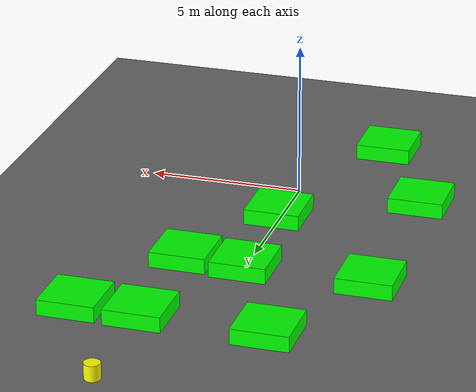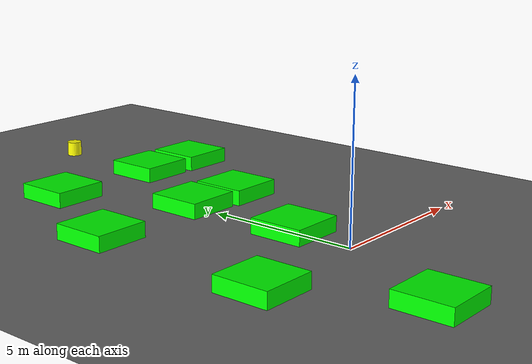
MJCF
<mujoco model="lvl4_standard_obs9_d2mid_seed1034">
    <compiler angle="degree" coordinate="local" inertiafromgeom="true"/>
    <option integrator="RK4" timestep="0.01"/>

    <asset>
        <texture builtin="gradient" height="100" rgb1="0.6 0.8 1" rgb2="0 0 0" type="skybox" width="100"/>
        <texture name="floor_texture" type="2d" builtin="checker" width="100" height="100" rgb1="0 0 0" rgb2="0.8 0.8 0.8"/>
        <material name="MatPlane" reflectance="0.5" shininess="1" specular="1" texrepeat="10 10" texture="floor_texture"/>
    </asset>

    <!-- Excluding the contact between the agent and the goal, and the agent and the floor -->
    <contact>
        <exclude body1="agent" body2="goal"/>
        <exclude body1 = "agent" body2 = "floor"/>
    </contact>

    <extension>
        <plugin plugin = "mujoco.pid">
            <instance name = "pid1">
                <config key="kp" value="2"/>
                <config key="ki" value="0"/>
                <config key="kd" value="55"/>
            </instance>
        </plugin>
    </extension>

    <worldbody>
        <light cutoff="100" diffuse="1 1 1" dir="-0 0 -1.3" directional="true" exponent="1" pos="0 0 1.3" specular=".1 .1 .1"/>
        <body name="floor" pos="0 0 0">
            <geom name="floor_geom" type="plane" size="20 20 0.1" material="MatPlane"/>
        </body>

                <body name="goal" pos="0.0000 0.0000 0">
            <geom name="goal_geom" type="plane" size="0.5 0.5 1" pos="0 0 0" rgba="1 0 0 1"/>
        </body>

                <body name="agent" pos="2.0000 14.0000 0.250">
            <joint name="j1" type="slide" axis ="1 0 0 "/>
            <joint name="j2" type="slide" axis ="0 1 0 "/>
            <geom name="agent_geom" type="cylinder" size="0.25 0.25 0.250" rgba="1 1 0 1"/>
        </body>

        <body name="obstacle1" pos="-1.9411 10.0604 0.250">  <geom name="obstacle1_geom" type="box" size="0.9000 0.9000 0.250" rgba="0 1 0 1"/></body>
        <body name="obstacle2" pos="1.9791 9.9786 0.250">  <geom name="obstacle2_geom" type="box" size="0.9000 0.9000 0.250" rgba="0 1 0 1"/></body>
        <body name="obstacle3" pos="4.0350 9.9388 0.250">  <geom name="obstacle3_geom" type="box" size="0.9000 0.9000 0.250" rgba="0 1 0 1"/></body>
        <body name="obstacle4" pos="-3.9529 6.0204 0.250">  <geom name="obstacle4_geom" type="box" size="0.9000 0.9000 0.250" rgba="0 1 0 1"/></body>
        <body name="obstacle5" pos="-0.0138 6.0462 0.250">  <geom name="obstacle5_geom" type="box" size="0.9000 0.9000 0.250" rgba="0 1 0 1"/></body>
        <body name="obstacle6" pos="1.9437 5.9262 0.250">  <geom name="obstacle6_geom" type="box" size="0.9000 0.9000 0.250" rgba="0 1 0 1"/></body>
        <body name="obstacle7" pos="0.0843 2.0895 0.250">  <geom name="obstacle7_geom" type="box" size="0.9000 0.9000 0.250" rgba="0 1 0 1"/></body>
        <body name="obstacle8" pos="-4.0696 -0.0918 0.250">  <geom name="obstacle8_geom" type="box" size="0.9000 0.9000 0.250" rgba="0 1 0 1"/></body>
        <body name="obstacle9" pos="-2.0132 -4.0405 0.250">  <geom name="obstacle9_geom" type="box" size="0.9000 0.9000 0.250" rgba="0 1 0 1"/></body>

    </worldbody>

    <sensor>
<!-- SENSORS -->

        <distance name="dist1" geom1="agent_geom" geom2="obstacle1_geom" cutoff="1.5"/>
        <distance name="dist2" geom1="agent_geom" geom2="obstacle2_geom" cutoff="1.5"/>
        <distance name="dist3" geom1="agent_geom" geom2="obstacle3_geom" cutoff="1.5"/>
        <distance name="dist4" geom1="agent_geom" geom2="obstacle4_geom" cutoff="1.5"/>
        <distance name="dist5" geom1="agent_geom" geom2="obstacle5_geom" cutoff="1.5"/>
        <distance name="dist6" geom1="agent_geom" geom2="obstacle6_geom" cutoff="1.5"/>
        <distance name="dist7" geom1="agent_geom" geom2="obstacle7_geom" cutoff="1.5"/>
        <distance name="dist8" geom1="agent_geom" geom2="obstacle8_geom" cutoff="1.5"/>
        <distance name="dist9" geom1="agent_geom" geom2="obstacle9_geom" cutoff="1.5"/>
</sensor>

    <actuator>
        <plugin joint="j1" plugin="mujoco.pid" instance="pid1" />
        <plugin joint="j2" plugin="mujoco.pid" instance="pid1"/>
    </actuator>
</mujoco>
